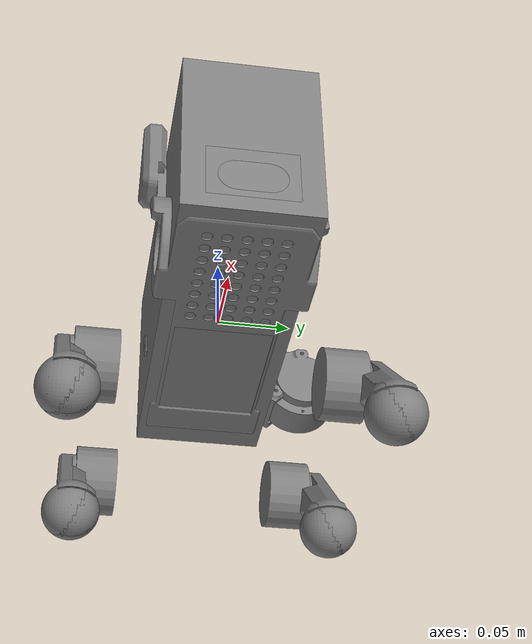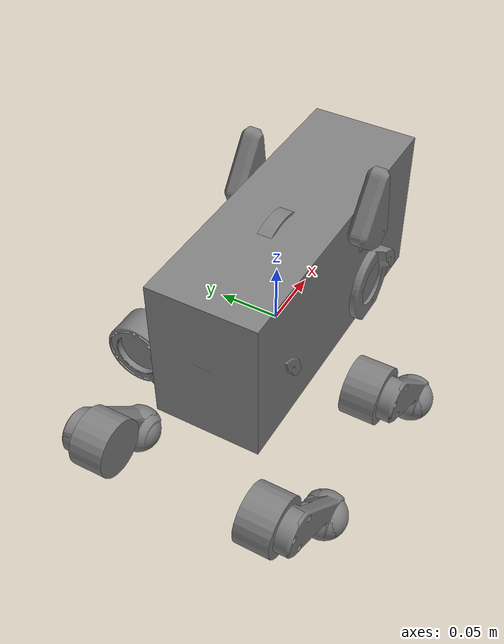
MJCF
<mujoco model="pupper_v3">
    <compiler angle="radian" meshdir="../meshes/stl/" autolimits="true" />
    <default />
    <asset>
        <mesh name="BodyV4v70_001" file="BodyV4v70_001.stl" />
        <mesh name="LegAssemblyForFlangedv26_001" file="LegAssemblyForFlangedv26_001.stl" />
        <mesh name="LegAssemblyForFlangedv26_002" file="LegAssemblyForFlangedv26_002.stl" />
        <mesh name="LegAssemblyForFlangedv26_003" file="LegAssemblyForFlangedv26_003.stl" />
        <mesh name="LegAssemblyForFlangedv26_010" file="LegAssemblyForFlangedv26_010.stl"
            scale="1 -1 1" />
        <mesh name="LegAssemblyForFlangedv26_011" file="LegAssemblyForFlangedv26_011.stl"
            scale="1 1 -1" />
        <mesh name="LegAssemblyForFlangedv26_012" file="LegAssemblyForFlangedv26_012.stl"
            scale="1 1 -1" />
        <mesh name="LegAssemblyForFlangedv26_005" file="LegAssemblyForFlangedv26_005.stl" />
        <mesh name="LegAssemblyForFlangedv26_006" file="LegAssemblyForFlangedv26_006.stl" />
        <mesh name="LegAssemblyForFlangedv26_007" file="LegAssemblyForFlangedv26_007.stl" />
        <mesh name="LegAssemblyForFlangedv26_013" file="LegAssemblyForFlangedv26_013.stl"
            scale="1 -1 1" />
        <mesh name="LegAssemblyForFlangedv26_014" file="LegAssemblyForFlangedv26_014.stl"
            scale="1 1 -1" />
        <mesh name="LegAssemblyForFlangedv26_015" file="LegAssemblyForFlangedv26_015.stl"
            scale="1 1 -1" />
    </asset>
    <worldbody>
        <body name="base_link" pos="0 0 0" gravcomp="0">
            <inertial pos="0.025 0 0.015" quat="0 0.677807 0 0.73524" mass="1.506"
                diaginertia="0.00854071 0.0085 0.00235929" />
            <joint name="world_to_body" type="free" />
            <geom size="0.04507 0.06379 0.129715" pos="0.02146 0 0.03345"
                quat="0.499998 -0.5 -0.500002 0.5" type="box" />
            <geom quat="0.499998 -0.5 -0.500002 0.5" type="mesh" contype="0" conaffinity="0"
                group="1" density="0" mesh="BodyV4v70_001" />
            <body name="leg_front_r_1" pos="0.075 -0.0835 0" quat="0.707105 0.707108 0 0"
                gravcomp="0">
                <inertial pos="0 0 0" mass="0.18" diaginertia="7.4e-05 5.8e-05 4.8e-05" />
                <joint name="leg_front_r_1" pos="0 0 0" axis="0 0 1" range="-1.22 2.51" />
                <geom pos="0 0 -0.028" quat="1.32679e-06 0 0 1" type="mesh" contype="0"
                    conaffinity="0" group="1" density="0" mesh="LegAssemblyForFlangedv26_001" />
                <body name="leg_front_r_2" pos="0 0 0"
                    quat="0.707107 2.24089e-06 -0.707107 4.83018e-06" gravcomp="0">
                    <inertial pos="0 -0.0334 0.05419" quat="0.903877 0.427791 0 0" mass="0.186"
                        diaginertia="0.000113 9.74951e-05 4.65049e-05" />
                    <joint name="leg_front_r_2" pos="0 0 0" axis="0 0 1" range="-0.42 3.14" />
                    <geom size="0.025 0.015" pos="0 -0.0494 0.0685" quat="0.707105 0 0.707108 0"
                        type="cylinder" />
                    <geom pos="-0.028 0 0" quat="-2.93388e-06 0.707108 2.26082e-06 0.707106"
                        type="mesh" contype="0" conaffinity="0" group="1" density="0"
                        mesh="LegAssemblyForFlangedv26_002" />
                    <body name="leg_front_r_3" pos="0 -0.0494 0.0685" quat="0.707105 0 0.707108 0"
                        gravcomp="0">
                        <inertial pos="0.03866 -0.03585 0.01833"
                            quat="0.270598 0.653281 -0.270598 0.653281" mass="0.05"
                            diaginertia="7.7e-05 7.55e-05 5.5e-06" />
                        <joint name="leg_front_r_3" pos="0 0 0" axis="0 0 1" range="-2.79 0.71" />
                        <geom size="0.01995" pos="0.06231 -0.06216 0.018" quat="1.32679e-06 0 0 1" />
                        <geom pos="0.0685 0.0494 -0.028" quat="1.32679e-06 0 0 1" type="mesh"
                            contype="0" conaffinity="0" group="1" density="0"
                            mesh="LegAssemblyForFlangedv26_003" />
                    </body>
                </body>
            </body>
            <body name="leg_front_l_1" pos="0.075 0.0835 0" quat="0.707105 -0.707108 0 0"
                gravcomp="0">
                <inertial pos="0 0 0" mass="0.18" diaginertia="7.4e-05 5.8e-05 4.8e-05" />
                <joint name="leg_front_l_1" pos="0 0 0" axis="0 0 1" range="-2.51 1.22" />
                <geom pos="0 0 -0.028" quat="1.32679e-06 0 0 1" type="mesh" contype="0"
                    conaffinity="0" group="1" density="0" mesh="LegAssemblyForFlangedv26_010" />
                <body name="leg_front_l_2" pos="0 0 0"
                    quat="-3.89602e-06 0.707107 -1.29867e-06 -0.707107" gravcomp="0">
                    <inertial pos="0 -0.0334 0.05419" quat="0.903877 0.427791 0 0" mass="0.186"
                        diaginertia="0.000113 9.74951e-05 4.65049e-05" />
                    <joint name="leg_front_l_2" pos="0 0 0" axis="0 0 1" range="-3.14 0.42" />
                    <geom size="0.025 0.015" pos="0 -0.0494 0.0685" quat="0.707105 0 0.707108 0"
                        type="cylinder" />
                    <geom pos="0.028 0 0" quat="-2.93388e-06 0.707108 2.26082e-06 0.707106"
                        type="mesh" contype="0" conaffinity="0" group="1" density="0"
                        mesh="LegAssemblyForFlangedv26_011" />
                    <body name="leg_front_l_3" pos="0 -0.0494 0.0685"
                        quat="9.38184e-07 -0.707108 9.38187e-07 0.707105" gravcomp="0">
                        <inertial pos="0.03866 0.03585 0.01833"
                            quat="0.653281 0.270598 -0.653281 0.270598" mass="0.05"
                            diaginertia="7.7e-05 7.55e-05 5.5e-06" />
                        <joint name="leg_front_l_3" pos="0 0 0" axis="0 0 1" range="-0.71 2.79" />
                        <geom size="0.01995" pos="0.06231 0.06216 0.018" quat="1.32679e-06 0 0 1" />
                        <geom pos="0.0685 -0.0494 -0.028"
                            quat="1.76029e-12 1.32679e-06 1 1.32679e-06" type="mesh" contype="0"
                            conaffinity="0" group="1" density="0"
                            mesh="LegAssemblyForFlangedv26_012" />
                    </body>
                </body>
            </body>
            <body name="leg_back_r_1" pos="-0.075 -0.0725 0" quat="0.707105 0.707108 0 0"
                gravcomp="0">
                <inertial pos="0 0 0" mass="0.18" diaginertia="7.4e-05 5.8e-05 4.8e-05" />
                <joint name="leg_back_r_1" pos="0 0 0" axis="0 0 1" range="-1.22 2.51" />
                <geom pos="0 0 -0.028" quat="1.32679e-06 0 0 1" type="mesh" contype="0"
                    conaffinity="0" group="1" density="0" mesh="LegAssemblyForFlangedv26_005" />
                <body name="leg_back_r_2" pos="0 0 0"
                    quat="0.707107 2.24089e-06 -0.707107 4.83018e-06" gravcomp="0">
                    <inertial pos="0 -0.0334 0.05419" quat="0.903877 0.427791 0 0" mass="0.186"
                        diaginertia="0.000113 9.74951e-05 4.65049e-05" />
                    <joint name="leg_back_r_2" pos="0 0 0" axis="0 0 1" range="-0.42 3.14" />
                    <geom size="0.025 0.015" pos="0 -0.0494 0.0685" quat="0.707105 0 0.707108 0"
                        type="cylinder" />
                    <geom pos="-0.028 0 0" quat="-2.93388e-06 0.707108 2.26082e-06 0.707106"
                        type="mesh" contype="0" conaffinity="0" group="1" density="0"
                        mesh="LegAssemblyForFlangedv26_006" />
                    <body name="leg_back_r_3" pos="0 -0.0494 0.0685" quat="0.707105 0 0.707108 0"
                        gravcomp="0">
                        <inertial pos="0.03866 -0.03585 0.01833"
                            quat="0.270598 0.653281 -0.270598 0.653281" mass="0.05"
                            diaginertia="7.7e-05 7.55e-05 5.5e-06" />
                        <joint name="leg_back_r_3" pos="0 0 0" axis="0 0 1" range="-2.79 0.71" />
                        <geom size="0.01995" pos="0.06231 -0.06216 0.018" quat="1.32679e-06 0 0 1" />
                        <geom pos="0.0685 0.0494 -0.028" quat="1.32679e-06 0 0 1" type="mesh"
                            contype="0" conaffinity="0" group="1" density="0"
                            mesh="LegAssemblyForFlangedv26_007" />
                    </body>
                </body>
            </body>
            <body name="leg_back_l_1" pos="-0.075 0.0725 0" quat="0.707105 -0.707108 0 0"
                gravcomp="0">
                <inertial pos="0 0 0" mass="0.18" diaginertia="7.4e-05 5.8e-05 4.8e-05" />
                <joint name="leg_back_l_1" pos="0 0 0" axis="0 0 1" range="-2.51 1.22" />
                <geom pos="0 0 -0.028" quat="1.32679e-06 0 0 1" type="mesh" contype="0"
                    conaffinity="0" group="1" density="0" mesh="LegAssemblyForFlangedv26_013" />
                <body name="leg_back_l_2" pos="0 0 0"
                    quat="-3.89602e-06 0.707107 -1.29867e-06 -0.707107" gravcomp="0">
                    <inertial pos="0 -0.0334 0.05419" quat="0.903877 0.427791 0 0" mass="0.186"
                        diaginertia="0.000113 9.74951e-05 4.65049e-05" />
                    <joint name="leg_back_l_2" pos="0 0 0" axis="0 0 1" range="-3.14 0.42" />
                    <geom size="0.025 0.015" pos="0 -0.0494 0.0685" quat="0.707105 0 0.707108 0"
                        type="cylinder" />
                    <geom pos="0.028 0 0" quat="-2.93388e-06 0.707108 2.26082e-06 0.707106"
                        type="mesh" contype="0" conaffinity="0" group="1" density="0"
                        mesh="LegAssemblyForFlangedv26_014" />
                    <body name="leg_back_l_3" pos="0 -0.0494 0.0685"
                        quat="9.38184e-07 -0.707108 9.38187e-07 0.707105" gravcomp="0">
                        <inertial pos="0.03866 0.03585 0.01833"
                            quat="0.653281 0.270598 -0.653281 0.270598" mass="0.05"
                            diaginertia="7.7e-05 7.55e-05 5.5e-06" />
                        <joint name="leg_back_l_3" pos="0 0 0" axis="0 0 1" range="-0.71 2.79" />
                        <geom size="0.01995" pos="0.06231 0.06216 0.018" quat="1.32679e-06 0 0 1" />
                        <geom pos="0.0685 -0.0494 -0.028"
                            quat="1.76029e-12 1.32679e-06 1 1.32679e-06" type="mesh" contype="0"
                            conaffinity="0" group="1" density="0"
                            mesh="LegAssemblyForFlangedv26_015" />
                    </body>
                </body>
            </body>
        </body>
    </worldbody>
</mujoco>
